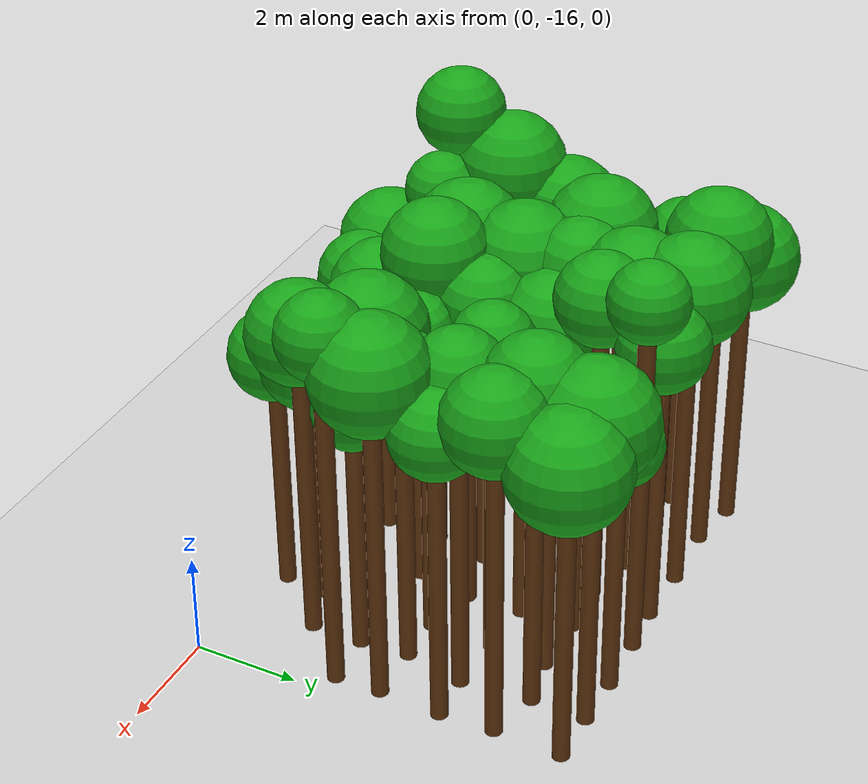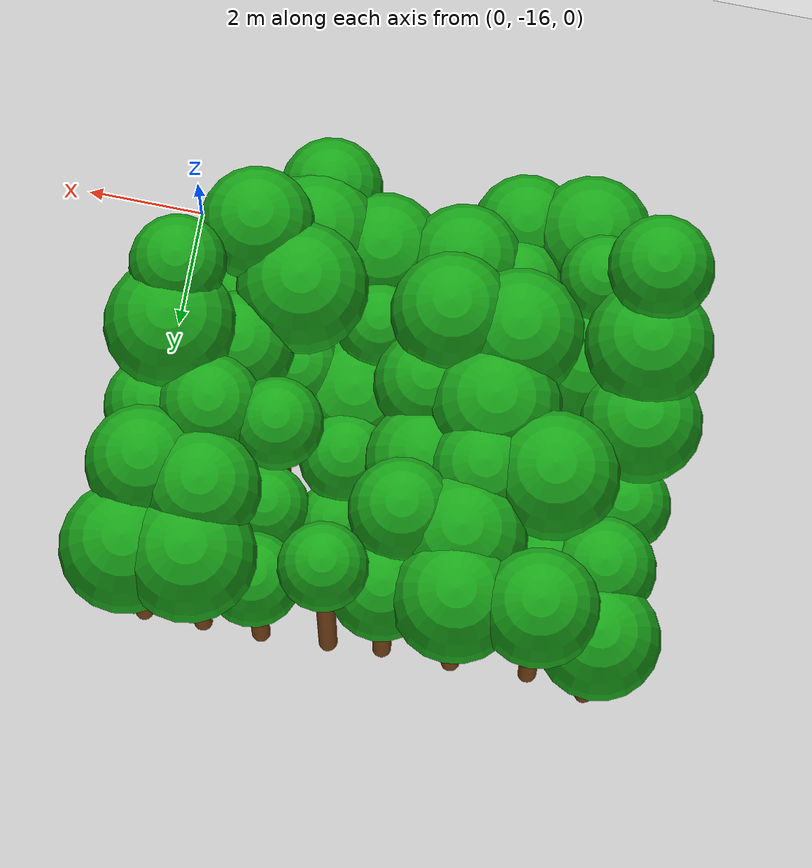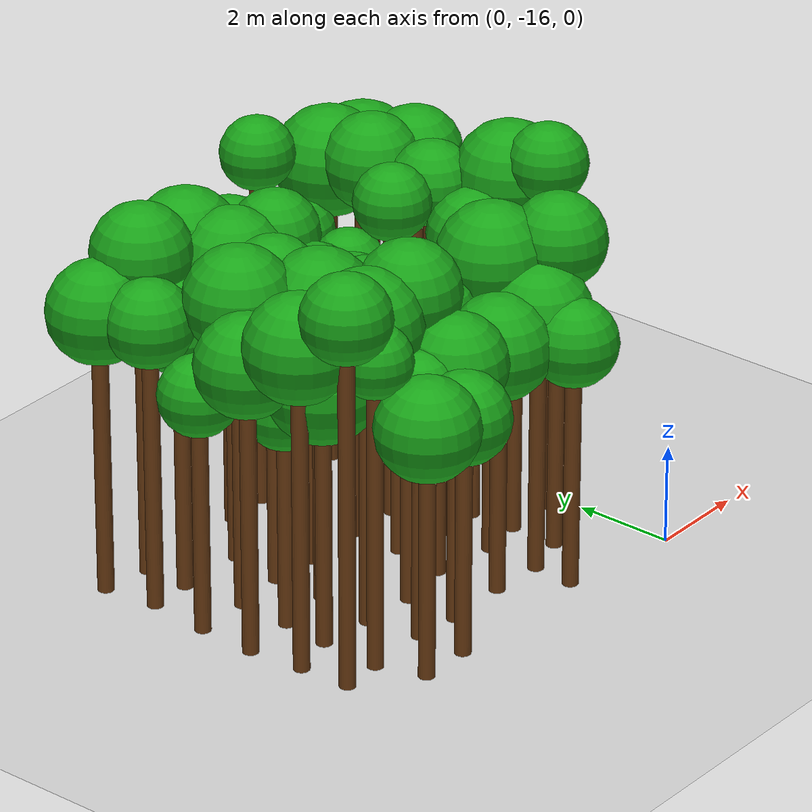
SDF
<sdf version="1.6">
 <world name="forest_world">
  <include><uri>model://sun</uri></include>
  <include><uri>model://ground_plane</uri></include>
  <model name="tree_1114_trunk">
   <static>true</static>
   <pose>-7.92 -14.71 3.49 0 0 0</pose>
   <link name="link">
    <collision name="collision">
     <geometry><cylinder><radius>0.16</radius><length>6.98</length></cylinder></geometry>
    </collision>
    <visual name="visual">
     <geometry><cylinder><radius>0.16</radius><length>6.98</length></cylinder></geometry>
     <material><ambient>0.35 0.20 0.05 1</ambient><diffuse>0.45 0.25 0.08 1</diffuse></material>
    </visual>
   </link>
  </model>
  <model name="tree_1114_leaf">
   <static>true</static>
   <pose>-7.92 -14.71 7.49 0 0 0</pose>
   <link name="link">
    <collision name="collision"><geometry><sphere><radius>0.85</radius></sphere></geometry></collision>
    <visual name="visual">
     <geometry><sphere><radius>0.85</radius></sphere></geometry>
     <material><ambient>0.05 0.45 0.05 1</ambient><diffuse>0.10 0.65 0.10 1</diffuse></material>
    </visual>
   </link>
  </model>
  <model name="tree_1115_trunk">
   <static>true</static>
   <pose>-7.97 -13.67 2.98 0 0 0</pose>
   <link name="link">
    <collision name="collision">
     <geometry><cylinder><radius>0.16</radius><length>5.97</length></cylinder></geometry>
    </collision>
    <visual name="visual">
     <geometry><cylinder><radius>0.16</radius><length>5.97</length></cylinder></geometry>
     <material><ambient>0.35 0.20 0.05 1</ambient><diffuse>0.45 0.25 0.08 1</diffuse></material>
    </visual>
   </link>
  </model>
  <model name="tree_1115_leaf">
   <static>true</static>
   <pose>-7.97 -13.67 6.59 0 0 0</pose>
   <link name="link">
    <collision name="collision"><geometry><sphere><radius>1.04</radius></sphere></geometry></collision>
    <visual name="visual">
     <geometry><sphere><radius>1.04</radius></sphere></geometry>
     <material><ambient>0.05 0.45 0.05 1</ambient><diffuse>0.10 0.65 0.10 1</diffuse></material>
    </visual>
   </link>
  </model>
  <model name="tree_1116_trunk">
   <static>true</static>
   <pose>-8.08 -12.55 2.66 0 0 0</pose>
   <link name="link">
    <collision name="collision">
     <geometry><cylinder><radius>0.16</radius><length>5.33</length></cylinder></geometry>
    </collision>
    <visual name="visual">
     <geometry><cylinder><radius>0.16</radius><length>5.33</length></cylinder></geometry>
     <material><ambient>0.35 0.20 0.05 1</ambient><diffuse>0.45 0.25 0.08 1</diffuse></material>
    </visual>
   </link>
  </model>
  <model name="tree_1116_leaf">
   <static>true</static>
   <pose>-8.08 -12.55 5.92 0 0 0</pose>
   <link name="link">
    <collision name="collision"><geometry><sphere><radius>0.99</radius></sphere></geometry></collision>
    <visual name="visual">
     <geometry><sphere><radius>0.99</radius></sphere></geometry>
     <material><ambient>0.05 0.45 0.05 1</ambient><diffuse>0.10 0.65 0.10 1</diffuse></material>
    </visual>
   </link>
  </model>
  <model name="tree_1117_trunk">
   <static>true</static>
   <pose>-8.05 -11.37 2.22 0 0 0</pose>
   <link name="link">
    <collision name="collision">
     <geometry><cylinder><radius>0.16</radius><length>4.43</length></cylinder></geometry>
    </collision>
    <visual name="visual">
     <geometry><cylinder><radius>0.16</radius><length>4.43</length></cylinder></geometry>
     <material><ambient>0.35 0.20 0.05 1</ambient><diffuse>0.45 0.25 0.08 1</diffuse></material>
    </visual>
   </link>
  </model>
  <model name="tree_1117_leaf">
   <static>true</static>
   <pose>-8.05 -11.37 4.90 0 0 0</pose>
   <link name="link">
    <collision name="collision"><geometry><sphere><radius>0.78</radius></sphere></geometry></collision>
    <visual name="visual">
     <geometry><sphere><radius>0.78</radius></sphere></geometry>
     <material><ambient>0.05 0.45 0.05 1</ambient><diffuse>0.10 0.65 0.10 1</diffuse></material>
    </visual>
   </link>
  </model>
  <model name="tree_1118_trunk">
   <static>true</static>
   <pose>-7.92 -10.10 2.70 0 0 0</pose>
   <link name="link">
    <collision name="collision">
     <geometry><cylinder><radius>0.16</radius><length>5.39</length></cylinder></geometry>
    </collision>
    <visual name="visual">
     <geometry><cylinder><radius>0.16</radius><length>5.39</length></cylinder></geometry>
     <material><ambient>0.35 0.20 0.05 1</ambient><diffuse>0.45 0.25 0.08 1</diffuse></material>
    </visual>
   </link>
  </model>
  <model name="tree_1118_leaf">
   <static>true</static>
   <pose>-7.92 -10.10 5.90 0 0 0</pose>
   <link name="link">
    <collision name="collision"><geometry><sphere><radius>0.85</radius></sphere></geometry></collision>
    <visual name="visual">
     <geometry><sphere><radius>0.85</radius></sphere></geometry>
     <material><ambient>0.05 0.45 0.05 1</ambient><diffuse>0.10 0.65 0.10 1</diffuse></material>
    </visual>
   </link>
  </model>
  <model name="tree_1119_trunk">
   <static>true</static>
   <pose>-8.05 -8.99 2.62 0 0 0</pose>
   <link name="link">
    <collision name="collision">
     <geometry><cylinder><radius>0.16</radius><length>5.24</length></cylinder></geometry>
    </collision>
    <visual name="visual">
     <geometry><cylinder><radius>0.16</radius><length>5.24</length></cylinder></geometry>
     <material><ambient>0.35 0.20 0.05 1</ambient><diffuse>0.45 0.25 0.08 1</diffuse></material>
    </visual>
   </link>
  </model>
  <model name="tree_1119_leaf">
   <static>true</static>
   <pose>-8.05 -8.99 5.83 0 0 0</pose>
   <link name="link">
    <collision name="collision"><geometry><sphere><radius>1.00</radius></sphere></geometry></collision>
    <visual name="visual">
     <geometry><sphere><radius>1.00</radius></sphere></geometry>
     <material><ambient>0.05 0.45 0.05 1</ambient><diffuse>0.10 0.65 0.10 1</diffuse></material>
    </visual>
   </link>
  </model>
  <model name="tree_1168_trunk">
   <static>true</static>
   <pose>-6.75 -15.61 2.26 0 0 0</pose>
   <link name="link">
    <collision name="collision">
     <geometry><cylinder><radius>0.16</radius><length>4.51</length></cylinder></geometry>
    </collision>
    <visual name="visual">
     <geometry><cylinder><radius>0.16</radius><length>4.51</length></cylinder></geometry>
     <material><ambient>0.35 0.20 0.05 1</ambient><diffuse>0.45 0.25 0.08 1</diffuse></material>
    </visual>
   </link>
  </model>
  <model name="tree_1168_leaf">
   <static>true</static>
   <pose>-6.75 -15.61 5.11 0 0 0</pose>
   <link name="link">
    <collision name="collision"><geometry><sphere><radius>0.99</radius></sphere></geometry></collision>
    <visual name="visual">
     <geometry><sphere><radius>0.99</radius></sphere></geometry>
     <material><ambient>0.05 0.45 0.05 1</ambient><diffuse>0.10 0.65 0.10 1</diffuse></material>
    </visual>
   </link>
  </model>
  <model name="tree_1169_trunk">
   <static>true</static>
   <pose>-7.06 -14.66 2.93 0 0 0</pose>
   <link name="link">
    <collision name="collision">
     <geometry><cylinder><radius>0.16</radius><length>5.86</length></cylinder></geometry>
    </collision>
    <visual name="visual">
     <geometry><cylinder><radius>0.16</radius><length>5.86</length></cylinder></geometry>
     <material><ambient>0.35 0.20 0.05 1</ambient><diffuse>0.45 0.25 0.08 1</diffuse></material>
    </visual>
   </link>
  </model>
  <model name="tree_1169_leaf">
   <static>true</static>
   <pose>-7.06 -14.66 6.29 0 0 0</pose>
   <link name="link">
    <collision name="collision"><geometry><sphere><radius>0.71</radius></sphere></geometry></collision>
    <visual name="visual">
     <geometry><sphere><radius>0.71</radius></sphere></geometry>
     <material><ambient>0.05 0.45 0.05 1</ambient><diffuse>0.10 0.65 0.10 1</diffuse></material>
    </visual>
   </link>
  </model>
  <model name="tree_1170_trunk">
   <static>true</static>
   <pose>-7.01 -13.41 2.35 0 0 0</pose>
   <link name="link">
    <collision name="collision">
     <geometry><cylinder><radius>0.16</radius><length>4.70</length></cylinder></geometry>
    </collision>
    <visual name="visual">
     <geometry><cylinder><radius>0.16</radius><length>4.70</length></cylinder></geometry>
     <material><ambient>0.35 0.20 0.05 1</ambient><diffuse>0.45 0.25 0.08 1</diffuse></material>
    </visual>
   </link>
  </model>
  <model name="tree_1170_leaf">
   <static>true</static>
   <pose>-7.01 -13.41 5.35 0 0 0</pose>
   <link name="link">
    <collision name="collision"><geometry><sphere><radius>1.09</radius></sphere></geometry></collision>
    <visual name="visual">
     <geometry><sphere><radius>1.09</radius></sphere></geometry>
     <material><ambient>0.05 0.45 0.05 1</ambient><diffuse>0.10 0.65 0.10 1</diffuse></material>
    </visual>
   </link>
  </model>
  <model name="tree_1171_trunk">
   <static>true</static>
   <pose>-6.91 -12.43 2.02 0 0 0</pose>
   <link name="link">
    <collision name="collision">
     <geometry><cylinder><radius>0.16</radius><length>4.05</length></cylinder></geometry>
    </collision>
    <visual name="visual">
     <geometry><cylinder><radius>0.16</radius><length>4.05</length></cylinder></geometry>
     <material><ambient>0.35 0.20 0.05 1</ambient><diffuse>0.45 0.25 0.08 1</diffuse></material>
    </visual>
   </link>
  </model>
  <model name="tree_1171_leaf">
   <static>true</static>
   <pose>-6.91 -12.43 4.53 0 0 0</pose>
   <link name="link">
    <collision name="collision"><geometry><sphere><radius>0.80</radius></sphere></geometry></collision>
    <visual name="visual">
     <geometry><sphere><radius>0.80</radius></sphere></geometry>
     <material><ambient>0.05 0.45 0.05 1</ambient><diffuse>0.10 0.65 0.10 1</diffuse></material>
    </visual>
   </link>
  </model>
  <model name="tree_1172_trunk">
   <static>true</static>
   <pose>-6.88 -11.34 2.86 0 0 0</pose>
   <link name="link">
    <collision name="collision">
     <geometry><cylinder><radius>0.16</radius><length>5.73</length></cylinder></geometry>
    </collision>
    <visual name="visual">
     <geometry><cylinder><radius>0.16</radius><length>5.73</length></cylinder></geometry>
     <material><ambient>0.35 0.20 0.05 1</ambient><diffuse>0.45 0.25 0.08 1</diffuse></material>
    </visual>
   </link>
  </model>
  <model name="tree_1172_leaf">
   <static>true</static>
   <pose>-6.88 -11.34 6.36 0 0 0</pose>
   <link name="link">
    <collision name="collision"><geometry><sphere><radius>1.05</radius></sphere></geometry></collision>
    <visual name="visual">
     <geometry><sphere><radius>1.05</radius></sphere></geometry>
     <material><ambient>0.05 0.45 0.05 1</ambient><diffuse>0.10 0.65 0.10 1</diffuse></material>
    </visual>
   </link>
  </model>
  <model name="tree_1173_trunk">
   <static>true</static>
   <pose>-7.03 -10.06 2.46 0 0 0</pose>
   <link name="link">
    <collision name="collision">
     <geometry><cylinder><radius>0.16</radius><length>4.92</length></cylinder></geometry>
    </collision>
    <visual name="visual">
     <geometry><cylinder><radius>0.16</radius><length>4.92</length></cylinder></geometry>
     <material><ambient>0.35 0.20 0.05 1</ambient><diffuse>0.45 0.25 0.08 1</diffuse></material>
    </visual>
   </link>
  </model>
  <model name="tree_1173_leaf">
   <static>true</static>
   <pose>-7.03 -10.06 5.47 0 0 0</pose>
   <link name="link">
    <collision name="collision"><geometry><sphere><radius>0.91</radius></sphere></geometry></collision>
    <visual name="visual">
     <geometry><sphere><radius>0.91</radius></sphere></geometry>
     <material><ambient>0.05 0.45 0.05 1</ambient><diffuse>0.10 0.65 0.10 1</diffuse></material>
    </visual>
   </link>
  </model>
  <model name="tree_1174_trunk">
   <static>true</static>
   <pose>-7.04 -9.15 3.05 0 0 0</pose>
   <link name="link">
    <collision name="collision">
     <geometry><cylinder><radius>0.16</radius><length>6.10</length></cylinder></geometry>
    </collision>
    <visual name="visual">
     <geometry><cylinder><radius>0.16</radius><length>6.10</length></cylinder></geometry>
     <material><ambient>0.35 0.20 0.05 1</ambient><diffuse>0.45 0.25 0.08 1</diffuse></material>
    </visual>
   </link>
  </model>
  <model name="tree_1174_leaf">
   <static>true</static>
   <pose>-7.04 -9.15 6.68 0 0 0</pose>
   <link name="link">
    <collision name="collision"><geometry><sphere><radius>0.97</radius></sphere></geometry></collision>
    <visual name="visual">
     <geometry><sphere><radius>0.97</radius></sphere></geometry>
     <material><ambient>0.05 0.45 0.05 1</ambient><diffuse>0.10 0.65 0.10 1</diffuse></material>
    </visual>
   </link>
  </model>
  <model name="tree_1223_trunk">
   <static>true</static>
   <pose>-5.67 -15.59 2.17 0 0 0</pose>
   <link name="link">
    <collision name="collision">
     <geometry><cylinder><radius>0.16</radius><length>4.35</length></cylinder></geometry>
    </collision>
    <visual name="visual">
     <geometry><cylinder><radius>0.16</radius><length>4.35</length></cylinder></geometry>
     <material><ambient>0.35 0.20 0.05 1</ambient><diffuse>0.45 0.25 0.08 1</diffuse></material>
    </visual>
   </link>
  </model>
  <model name="tree_1223_leaf">
   <static>true</static>
   <pose>-5.67 -15.59 4.88 0 0 0</pose>
   <link name="link">
    <collision name="collision"><geometry><sphere><radius>0.89</radius></sphere></geometry></collision>
    <visual name="visual">
     <geometry><sphere><radius>0.89</radius></sphere></geometry>
     <material><ambient>0.05 0.45 0.05 1</ambient><diffuse>0.10 0.65 0.10 1</diffuse></material>
    </visual>
   </link>
  </model>
  <model name="tree_1224_trunk">
   <static>true</static>
   <pose>-5.72 -14.62 2.34 0 0 0</pose>
   <link name="link">
    <collision name="collision">
     <geometry><cylinder><radius>0.16</radius><length>4.67</length></cylinder></geometry>
    </collision>
    <visual name="visual">
     <geometry><cylinder><radius>0.16</radius><length>4.67</length></cylinder></geometry>
     <material><ambient>0.35 0.20 0.05 1</ambient><diffuse>0.45 0.25 0.08 1</diffuse></material>
    </visual>
   </link>
  </model>
  <model name="tree_1224_leaf">
   <static>true</static>
   <pose>-5.72 -14.62 5.13 0 0 0</pose>
   <link name="link">
    <collision name="collision"><geometry><sphere><radius>0.76</radius></sphere></geometry></collision>
    <visual name="visual">
     <geometry><sphere><radius>0.76</radius></sphere></geometry>
     <material><ambient>0.05 0.45 0.05 1</ambient><diffuse>0.10 0.65 0.10 1</diffuse></material>
    </visual>
   </link>
  </model>
  <model name="tree_1225_trunk">
   <static>true</static>
   <pose>-5.91 -13.54 2.78 0 0 0</pose>
   <link name="link">
    <collision name="collision">
     <geometry><cylinder><radius>0.16</radius><length>5.56</length></cylinder></geometry>
    </collision>
    <visual name="visual">
     <geometry><cylinder><radius>0.16</radius><length>5.56</length></cylinder></geometry>
     <material><ambient>0.35 0.20 0.05 1</ambient><diffuse>0.45 0.25 0.08 1</diffuse></material>
    </visual>
   </link>
  </model>
  <model name="tree_1225_leaf">
   <static>true</static>
   <pose>-5.91 -13.54 6.20 0 0 0</pose>
   <link name="link">
    <collision name="collision"><geometry><sphere><radius>1.06</radius></sphere></geometry></collision>
    <visual name="visual">
     <geometry><sphere><radius>1.06</radius></sphere></geometry>
     <material><ambient>0.05 0.45 0.05 1</ambient><diffuse>0.10 0.65 0.10 1</diffuse></material>
    </visual>
   </link>
  </model>
  <model name="tree_1226_trunk">
   <static>true</static>
   <pose>-5.75 -12.31 2.76 0 0 0</pose>
   <link name="link">
    <collision name="collision">
     <geometry><cylinder><radius>0.16</radius><length>5.51</length></cylinder></geometry>
    </collision>
    <visual name="visual">
     <geometry><cylinder><radius>0.16</radius><length>5.51</length></cylinder></geometry>
     <material><ambient>0.35 0.20 0.05 1</ambient><diffuse>0.45 0.25 0.08 1</diffuse></material>
    </visual>
   </link>
  </model>
  <model name="tree_1226_leaf">
   <static>true</static>
   <pose>-5.75 -12.31 6.15 0 0 0</pose>
   <link name="link">
    <collision name="collision"><geometry><sphere><radius>1.07</radius></sphere></geometry></collision>
    <visual name="visual">
     <geometry><sphere><radius>1.07</radius></sphere></geometry>
     <material><ambient>0.05 0.45 0.05 1</ambient><diffuse>0.10 0.65 0.10 1</diffuse></material>
    </visual>
   </link>
  </model>
  <model name="tree_1227_trunk">
   <static>true</static>
   <pose>-5.78 -11.23 2.86 0 0 0</pose>
   <link name="link">
    <collision name="collision">
     <geometry><cylinder><radius>0.16</radius><length>5.72</length></cylinder></geometry>
    </collision>
    <visual name="visual">
     <geometry><cylinder><radius>0.16</radius><length>5.72</length></cylinder></geometry>
     <material><ambient>0.35 0.20 0.05 1</ambient><diffuse>0.45 0.25 0.08 1</diffuse></material>
    </visual>
   </link>
  </model>
  <model name="tree_1227_leaf">
   <static>true</static>
   <pose>-5.78 -11.23 6.26 0 0 0</pose>
   <link name="link">
    <collision name="collision"><geometry><sphere><radius>0.90</radius></sphere></geometry></collision>
    <visual name="visual">
     <geometry><sphere><radius>0.90</radius></sphere></geometry>
     <material><ambient>0.05 0.45 0.05 1</ambient><diffuse>0.10 0.65 0.10 1</diffuse></material>
    </visual>
   </link>
  </model>
  <model name="tree_1228_trunk">
   <static>true</static>
   <pose>-5.62 -10.12 2.81 0 0 0</pose>
   <link name="link">
    <collision name="collision">
     <geometry><cylinder><radius>0.16</radius><length>5.61</length></cylinder></geometry>
    </collision>
    <visual name="visual">
     <geometry><cylinder><radius>0.16</radius><length>5.61</length></cylinder></geometry>
     <material><ambient>0.35 0.20 0.05 1</ambient><diffuse>0.45 0.25 0.08 1</diffuse></material>
    </visual>
   </link>
  </model>
  <model name="tree_1228_leaf">
   <static>true</static>
   <pose>-5.62 -10.12 6.25 0 0 0</pose>
   <link name="link">
    <collision name="collision"><geometry><sphere><radius>1.06</radius></sphere></geometry></collision>
    <visual name="visual">
     <geometry><sphere><radius>1.06</radius></sphere></geometry>
     <material><ambient>0.05 0.45 0.05 1</ambient><diffuse>0.10 0.65 0.10 1</diffuse></material>
    </visual>
   </link>
  </model>
  <model name="tree_1229_trunk">
   <static>true</static>
   <pose>-5.72 -9.09 2.89 0 0 0</pose>
   <link name="link">
    <collision name="collision">
     <geometry><cylinder><radius>0.16</radius><length>5.78</length></cylinder></geometry>
    </collision>
    <visual name="visual">
     <geometry><cylinder><radius>0.16</radius><length>5.78</length></cylinder></geometry>
     <material><ambient>0.35 0.20 0.05 1</ambient><diffuse>0.45 0.25 0.08 1</diffuse></material>
    </visual>
   </link>
  </model>
  <model name="tree_1229_leaf">
   <static>true</static>
   <pose>-5.72 -9.09 6.40 0 0 0</pose>
   <link name="link">
    <collision name="collision"><geometry><sphere><radius>1.04</radius></sphere></geometry></collision>
    <visual name="visual">
     <geometry><sphere><radius>1.04</radius></sphere></geometry>
     <material><ambient>0.05 0.45 0.05 1</ambient><diffuse>0.10 0.65 0.10 1</diffuse></material>
    </visual>
   </link>
  </model>
  <model name="tree_1279_trunk">
   <static>true</static>
   <pose>-4.80 -14.71 2.36 0 0 0</pose>
   <link name="link">
    <collision name="collision">
     <geometry><cylinder><radius>0.16</radius><length>4.73</length></cylinder></geometry>
    </collision>
    <visual name="visual">
     <geometry><cylinder><radius>0.16</radius><length>4.73</length></cylinder></geometry>
     <material><ambient>0.35 0.20 0.05 1</ambient><diffuse>0.45 0.25 0.08 1</diffuse></material>
    </visual>
   </link>
  </model>
  <model name="tree_1279_leaf">
   <static>true</static>
   <pose>-4.80 -14.71 5.32 0 0 0</pose>
   <link name="link">
    <collision name="collision"><geometry><sphere><radius>0.98</radius></sphere></geometry></collision>
    <visual name="visual">
     <geometry><sphere><radius>0.98</radius></sphere></geometry>
     <material><ambient>0.05 0.45 0.05 1</ambient><diffuse>0.10 0.65 0.10 1</diffuse></material>
    </visual>
   </link>
  </model>
  <model name="tree_1280_trunk">
   <static>true</static>
   <pose>-4.79 -13.61 2.92 0 0 0</pose>
   <link name="link">
    <collision name="collision">
     <geometry><cylinder><radius>0.16</radius><length>5.84</length></cylinder></geometry>
    </collision>
    <visual name="visual">
     <geometry><cylinder><radius>0.16</radius><length>5.84</length></cylinder></geometry>
     <material><ambient>0.35 0.20 0.05 1</ambient><diffuse>0.45 0.25 0.08 1</diffuse></material>
    </visual>
   </link>
  </model>
  <model name="tree_1280_leaf">
   <static>true</static>
   <pose>-4.79 -13.61 6.44 0 0 0</pose>
   <link name="link">
    <collision name="collision"><geometry><sphere><radius>0.99</radius></sphere></geometry></collision>
    <visual name="visual">
     <geometry><sphere><radius>0.99</radius></sphere></geometry>
     <material><ambient>0.05 0.45 0.05 1</ambient><diffuse>0.10 0.65 0.10 1</diffuse></material>
    </visual>
   </link>
  </model>
  <model name="tree_1281_trunk">
   <static>true</static>
   <pose>-4.61 -12.54 2.64 0 0 0</pose>
   <link name="link">
    <collision name="collision">
     <geometry><cylinder><radius>0.16</radius><length>5.27</length></cylinder></geometry>
    </collision>
    <visual name="visual">
     <geometry><cylinder><radius>0.16</radius><length>5.27</length></cylinder></geometry>
     <material><ambient>0.35 0.20 0.05 1</ambient><diffuse>0.45 0.25 0.08 1</diffuse></material>
    </visual>
   </link>
  </model>
  <model name="tree_1281_leaf">
   <static>true</static>
   <pose>-4.61 -12.54 5.80 0 0 0</pose>
   <link name="link">
    <collision name="collision"><geometry><sphere><radius>0.88</radius></sphere></geometry></collision>
    <visual name="visual">
     <geometry><sphere><radius>0.88</radius></sphere></geometry>
     <material><ambient>0.05 0.45 0.05 1</ambient><diffuse>0.10 0.65 0.10 1</diffuse></material>
    </visual>
   </link>
  </model>
  <model name="tree_1282_trunk">
   <static>true</static>
   <pose>-4.78 -11.30 2.54 0 0 0</pose>
   <link name="link">
    <collision name="collision">
     <geometry><cylinder><radius>0.16</radius><length>5.09</length></cylinder></geometry>
    </collision>
    <visual name="visual">
     <geometry><cylinder><radius>0.16</radius><length>5.09</length></cylinder></geometry>
     <material><ambient>0.35 0.20 0.05 1</ambient><diffuse>0.45 0.25 0.08 1</diffuse></material>
    </visual>
   </link>
  </model>
  <model name="tree_1282_leaf">
   <static>true</static>
   <pose>-4.78 -11.30 5.66 0 0 0</pose>
   <link name="link">
    <collision name="collision"><geometry><sphere><radius>0.96</radius></sphere></geometry></collision>
    <visual name="visual">
     <geometry><sphere><radius>0.96</radius></sphere></geometry>
     <material><ambient>0.05 0.45 0.05 1</ambient><diffuse>0.10 0.65 0.10 1</diffuse></material>
    </visual>
   </link>
  </model>
  <model name="tree_1283_trunk">
   <static>true</static>
   <pose>-4.62 -10.30 2.99 0 0 0</pose>
   <link name="link">
    <collision name="collision">
     <geometry><cylinder><radius>0.16</radius><length>5.99</length></cylinder></geometry>
    </collision>
    <visual name="visual">
     <geometry><cylinder><radius>0.16</radius><length>5.99</length></cylinder></geometry>
     <material><ambient>0.35 0.20 0.05 1</ambient><diffuse>0.45 0.25 0.08 1</diffuse></material>
    </visual>
   </link>
  </model>
  <model name="tree_1283_leaf">
   <static>true</static>
   <pose>-4.62 -10.30 6.50 0 0 0</pose>
   <link name="link">
    <collision name="collision"><geometry><sphere><radius>0.86</radius></sphere></geometry></collision>
    <visual name="visual">
     <geometry><sphere><radius>0.86</radius></sphere></geometry>
     <material><ambient>0.05 0.45 0.05 1</ambient><diffuse>0.10 0.65 0.10 1</diffuse></material>
    </visual>
   </link>
  </model>
  <model name="tree_1284_trunk">
   <static>true</static>
   <pose>-4.53 -9.10 2.73 0 0 0</pose>
   <link name="link">
    <collision name="collision">
     <geometry><cylinder><radius>0.16</radius><length>5.45</length></cylinder></geometry>
    </collision>
    <visual name="visual">
     <geometry><cylinder><radius>0.16</radius><length>5.45</length></cylinder></geometry>
     <material><ambient>0.35 0.20 0.05 1</ambient><diffuse>0.45 0.25 0.08 1</diffuse></material>
    </visual>
   </link>
  </model>
  <model name="tree_1284_leaf">
   <static>true</static>
   <pose>-4.53 -9.10 5.96 0 0 0</pose>
   <link name="link">
    <collision name="collision"><geometry><sphere><radius>0.85</radius></sphere></geometry></collision>
    <visual name="visual">
     <geometry><sphere><radius>0.85</radius></sphere></geometry>
     <material><ambient>0.05 0.45 0.05 1</ambient><diffuse>0.10 0.65 0.10 1</diffuse></material>
    </visual>
   </link>
  </model>
  <model name="tree_1334_trunk">
   <static>true</static>
   <pose>-3.47 -14.66 2.25 0 0 0</pose>
   <link name="link">
    <collision name="collision">
     <geometry><cylinder><radius>0.16</radius><length>4.50</length></cylinder></geometry>
    </collision>
    <visual name="visual">
     <geometry><cylinder><radius>0.16</radius><length>4.50</length></cylinder></geometry>
     <material><ambient>0.35 0.20 0.05 1</ambient><diffuse>0.45 0.25 0.08 1</diffuse></material>
    </visual>
   </link>
  </model>
  <model name="tree_1334_leaf">
   <static>true</static>
   <pose>-3.47 -14.66 5.11 0 0 0</pose>
   <link name="link">
    <collision name="collision"><geometry><sphere><radius>1.02</radius></sphere></geometry></collision>
    <visual name="visual">
     <geometry><sphere><radius>1.02</radius></sphere></geometry>
     <material><ambient>0.05 0.45 0.05 1</ambient><diffuse>0.10 0.65 0.10 1</diffuse></material>
    </visual>
   </link>
  </model>
  <model name="tree_1335_trunk">
   <static>true</static>
   <pose>-3.66 -13.39 2.55 0 0 0</pose>
   <link name="link">
    <collision name="collision">
     <geometry><cylinder><radius>0.16</radius><length>5.09</length></cylinder></geometry>
    </collision>
    <visual name="visual">
     <geometry><cylinder><radius>0.16</radius><length>5.09</length></cylinder></geometry>
     <material><ambient>0.35 0.20 0.05 1</ambient><diffuse>0.45 0.25 0.08 1</diffuse></material>
    </visual>
   </link>
  </model>
  <model name="tree_1335_leaf">
   <static>true</static>
   <pose>-3.66 -13.39 5.52 0 0 0</pose>
   <link name="link">
    <collision name="collision"><geometry><sphere><radius>0.71</radius></sphere></geometry></collision>
    <visual name="visual">
     <geometry><sphere><radius>0.71</radius></sphere></geometry>
     <material><ambient>0.05 0.45 0.05 1</ambient><diffuse>0.10 0.65 0.10 1</diffuse></material>
    </visual>
   </link>
  </model>
  <model name="tree_1336_trunk">
   <static>true</static>
   <pose>-3.47 -12.31 2.02 0 0 0</pose>
   <link name="link">
    <collision name="collision">
     <geometry><cylinder><radius>0.16</radius><length>4.05</length></cylinder></geometry>
    </collision>
    <visual name="visual">
     <geometry><cylinder><radius>0.16</radius><length>4.05</length></cylinder></geometry>
     <material><ambient>0.35 0.20 0.05 1</ambient><diffuse>0.45 0.25 0.08 1</diffuse></material>
    </visual>
   </link>
  </model>
  <model name="tree_1336_leaf">
   <static>true</static>
   <pose>-3.47 -12.31 4.69 0 0 0</pose>
   <link name="link">
    <collision name="collision"><geometry><sphere><radius>1.07</radius></sphere></geometry></collision>
    <visual name="visual">
     <geometry><sphere><radius>1.07</radius></sphere></geometry>
     <material><ambient>0.05 0.45 0.05 1</ambient><diffuse>0.10 0.65 0.10 1</diffuse></material>
    </visual>
   </link>
  </model>
  <model name="tree_1337_trunk">
   <static>true</static>
   <pose>-3.52 -11.23 2.35 0 0 0</pose>
   <link name="link">
    <collision name="collision">
     <geometry><cylinder><radius>0.16</radius><length>4.70</length></cylinder></geometry>
    </collision>
    <visual name="visual">
     <geometry><cylinder><radius>0.16</radius><length>4.70</length></cylinder></geometry>
     <material><ambient>0.35 0.20 0.05 1</ambient><diffuse>0.45 0.25 0.08 1</diffuse></material>
    </visual>
   </link>
  </model>
  <model name="tree_1337_leaf">
   <static>true</static>
   <pose>-3.52 -11.23 5.15 0 0 0</pose>
   <link name="link">
    <collision name="collision"><geometry><sphere><radius>0.76</radius></sphere></geometry></collision>
    <visual name="visual">
     <geometry><sphere><radius>0.76</radius></sphere></geometry>
     <material><ambient>0.05 0.45 0.05 1</ambient><diffuse>0.10 0.65 0.10 1</diffuse></material>
    </visual>
   </link>
  </model>
  <model name="tree_1338_trunk">
   <static>true</static>
   <pose>-3.57 -10.22 2.11 0 0 0</pose>
   <link name="link">
    <collision name="collision">
     <geometry><cylinder><radius>0.16</radius><length>4.21</length></cylinder></geometry>
    </collision>
    <visual name="visual">
     <geometry><cylinder><radius>0.16</radius><length>4.21</length></cylinder></geometry>
     <material><ambient>0.35 0.20 0.05 1</ambient><diffuse>0.45 0.25 0.08 1</diffuse></material>
    </visual>
   </link>
  </model>
  <model name="tree_1338_leaf">
   <static>true</static>
   <pose>-3.57 -10.22 4.64 0 0 0</pose>
   <link name="link">
    <collision name="collision"><geometry><sphere><radius>0.71</radius></sphere></geometry></collision>
    <visual name="visual">
     <geometry><sphere><radius>0.71</radius></sphere></geometry>
     <material><ambient>0.05 0.45 0.05 1</ambient><diffuse>0.10 0.65 0.10 1</diffuse></material>
    </visual>
   </link>
  </model>
  <model name="tree_1339_trunk">
   <static>true</static>
   <pose>-3.61 -9.03 3.47 0 0 0</pose>
   <link name="link">
    <collision name="collision">
     <geometry><cylinder><radius>0.16</radius><length>6.95</length></cylinder></geometry>
    </collision>
    <visual name="visual">
     <geometry><cylinder><radius>0.16</radius><length>6.95</length></cylinder></geometry>
     <material><ambient>0.35 0.20 0.05 1</ambient><diffuse>0.45 0.25 0.08 1</diffuse></material>
    </visual>
   </link>
  </model>
  <model name="tree_1339_leaf">
   <static>true</static>
   <pose>-3.61 -9.03 7.38 0 0 0</pose>
   <link name="link">
    <collision name="collision"><geometry><sphere><radius>0.72</radius></sphere></geometry></collision>
    <visual name="visual">
     <geometry><sphere><radius>0.72</radius></sphere></geometry>
     <material><ambient>0.05 0.45 0.05 1</ambient><diffuse>0.10 0.65 0.10 1</diffuse></material>
    </visual>
   </link>
  </model>
  <model name="tree_1388_trunk">
   <static>true</static>
   <pose>-2.43 -15.58 2.29 0 0 0</pose>
   <link name="link">
    <collision name="collision">
     <geometry><cylinder><radius>0.16</radius><length>4.57</length></cylinder></geometry>
    </collision>
    <visual name="visual">
     <geometry><cylinder><radius>0.16</radius><length>4.57</length></cylinder></geometry>
     <material><ambient>0.35 0.20 0.05 1</ambient><diffuse>0.45 0.25 0.08 1</diffuse></material>
    </visual>
   </link>
  </model>
  <model name="tree_1388_leaf">
   <static>true</static>
   <pose>-2.43 -15.58 5.08 0 0 0</pose>
   <link name="link">
    <collision name="collision"><geometry><sphere><radius>0.85</radius></sphere></geometry></collision>
    <visual name="visual">
     <geometry><sphere><radius>0.85</radius></sphere></geometry>
     <material><ambient>0.05 0.45 0.05 1</ambient><diffuse>0.10 0.65 0.10 1</diffuse></material>
    </visual>
   </link>
  </model>
  <model name="tree_1389_trunk">
   <static>true</static>
   <pose>-2.37 -14.72 2.36 0 0 0</pose>
   <link name="link">
    <collision name="collision">
     <geometry><cylinder><radius>0.16</radius><length>4.72</length></cylinder></geometry>
    </collision>
    <visual name="visual">
     <geometry><cylinder><radius>0.16</radius><length>4.72</length></cylinder></geometry>
     <material><ambient>0.35 0.20 0.05 1</ambient><diffuse>0.45 0.25 0.08 1</diffuse></material>
    </visual>
   </link>
  </model>
  <model name="tree_1389_leaf">
   <static>true</static>
   <pose>-2.37 -14.72 5.34 0 0 0</pose>
   <link name="link">
    <collision name="collision"><geometry><sphere><radius>1.03</radius></sphere></geometry></collision>
    <visual name="visual">
     <geometry><sphere><radius>1.03</radius></sphere></geometry>
     <material><ambient>0.05 0.45 0.05 1</ambient><diffuse>0.10 0.65 0.10 1</diffuse></material>
    </visual>
   </link>
  </model>
  <model name="tree_1390_trunk">
   <static>true</static>
   <pose>-2.35 -13.61 2.77 0 0 0</pose>
   <link name="link">
    <collision name="collision">
     <geometry><cylinder><radius>0.16</radius><length>5.54</length></cylinder></geometry>
    </collision>
    <visual name="visual">
     <geometry><cylinder><radius>0.16</radius><length>5.54</length></cylinder></geometry>
     <material><ambient>0.35 0.20 0.05 1</ambient><diffuse>0.45 0.25 0.08 1</diffuse></material>
    </visual>
   </link>
  </model>
  <model name="tree_1390_leaf">
   <static>true</static>
   <pose>-2.35 -13.61 6.19 0 0 0</pose>
   <link name="link">
    <collision name="collision"><geometry><sphere><radius>1.07</radius></sphere></geometry></collision>
    <visual name="visual">
     <geometry><sphere><radius>1.07</radius></sphere></geometry>
     <material><ambient>0.05 0.45 0.05 1</ambient><diffuse>0.10 0.65 0.10 1</diffuse></material>
    </visual>
   </link>
  </model>
  <model name="tree_1391_trunk">
   <static>true</static>
   <pose>-2.44 -12.52 2.31 0 0 0</pose>
   <link name="link">
    <collision name="collision">
     <geometry><cylinder><radius>0.16</radius><length>4.61</length></cylinder></geometry>
    </collision>
    <visual name="visual">
     <geometry><cylinder><radius>0.16</radius><length>4.61</length></cylinder></geometry>
     <material><ambient>0.35 0.20 0.05 1</ambient><diffuse>0.45 0.25 0.08 1</diffuse></material>
    </visual>
   </link>
  </model>
  <model name="tree_1391_leaf">
   <static>true</static>
   <pose>-2.44 -12.52 5.08 0 0 0</pose>
   <link name="link">
    <collision name="collision"><geometry><sphere><radius>0.78</radius></sphere></geometry></collision>
    <visual name="visual">
     <geometry><sphere><radius>0.78</radius></sphere></geometry>
     <material><ambient>0.05 0.45 0.05 1</ambient><diffuse>0.10 0.65 0.10 1</diffuse></material>
    </visual>
   </link>
  </model>
  <model name="tree_1392_trunk">
   <static>true</static>
   <pose>-2.41 -11.28 3.08 0 0 0</pose>
   <link name="link">
    <collision name="collision">
     <geometry><cylinder><radius>0.16</radius><length>6.15</length></cylinder></geometry>
    </collision>
    <visual name="visual">
     <geometry><cylinder><radius>0.16</radius><length>6.15</length></cylinder></geometry>
     <material><ambient>0.35 0.20 0.05 1</ambient><diffuse>0.45 0.25 0.08 1</diffuse></material>
    </visual>
   </link>
  </model>
  <model name="tree_1392_leaf">
   <static>true</static>
   <pose>-2.41 -11.28 6.60 0 0 0</pose>
   <link name="link">
    <collision name="collision"><geometry><sphere><radius>0.75</radius></sphere></geometry></collision>
    <visual name="visual">
     <geometry><sphere><radius>0.75</radius></sphere></geometry>
     <material><ambient>0.05 0.45 0.05 1</ambient><diffuse>0.10 0.65 0.10 1</diffuse></material>
    </visual>
   </link>
  </model>
  <model name="tree_1393_trunk">
   <static>true</static>
   <pose>-2.40 -10.22 2.26 0 0 0</pose>
   <link name="link">
    <collision name="collision">
     <geometry><cylinder><radius>0.16</radius><length>4.51</length></cylinder></geometry>
    </collision>
    <visual name="visual">
     <geometry><cylinder><radius>0.16</radius><length>4.51</length></cylinder></geometry>
     <material><ambient>0.35 0.20 0.05 1</ambient><diffuse>0.45 0.25 0.08 1</diffuse></material>
    </visual>
   </link>
  </model>
  <model name="tree_1393_leaf">
   <static>true</static>
   <pose>-2.40 -10.22 4.95 0 0 0</pose>
   <link name="link">
    <collision name="collision"><geometry><sphere><radius>0.72</radius></sphere></geometry></collision>
    <visual name="visual">
     <geometry><sphere><radius>0.72</radius></sphere></geometry>
     <material><ambient>0.05 0.45 0.05 1</ambient><diffuse>0.10 0.65 0.10 1</diffuse></material>
    </visual>
   </link>
  </model>
  <model name="tree_1394_trunk">
   <static>true</static>
   <pose>-2.46 -8.97 2.41 0 0 0</pose>
   <link name="link">
    <collision name="collision">
     <geometry><cylinder><radius>0.16</radius><length>4.82</length></cylinder></geometry>
    </collision>
    <visual name="visual">
     <geometry><cylinder><radius>0.16</radius><length>4.82</length></cylinder></geometry>
     <material><ambient>0.35 0.20 0.05 1</ambient><diffuse>0.45 0.25 0.08 1</diffuse></material>
    </visual>
   </link>
  </model>
  <model name="tree_1394_leaf">
   <static>true</static>
   <pose>-2.46 -8.97 5.29 0 0 0</pose>
   <link name="link">
    <collision name="collision"><geometry><sphere><radius>0.78</radius></sphere></geometry></collision>
    <visual name="visual">
     <geometry><sphere><radius>0.78</radius></sphere></geometry>
     <material><ambient>0.05 0.45 0.05 1</ambient><diffuse>0.10 0.65 0.10 1</diffuse></material>
    </visual>
   </link>
  </model>
  <model name="tree_1441_trunk">
   <static>true</static>
   <pose>-1.45 -14.45 2.94 0 0 0</pose>
   <link name="link">
    <collision name="collision">
     <geometry><cylinder><radius>0.16</radius><length>5.88</length></cylinder></geometry>
    </collision>
    <visual name="visual">
     <geometry><cylinder><radius>0.16</radius><length>5.88</length></cylinder></geometry>
     <material><ambient>0.35 0.20 0.05 1</ambient><diffuse>0.45 0.25 0.08 1</diffuse></material>
    </visual>
   </link>
  </model>
  <model name="tree_1441_leaf">
   <static>true</static>
   <pose>-1.45 -14.45 6.44 0 0 0</pose>
   <link name="link">
    <collision name="collision"><geometry><sphere><radius>0.93</radius></sphere></geometry></collision>
    <visual name="visual">
     <geometry><sphere><radius>0.93</radius></sphere></geometry>
     <material><ambient>0.05 0.45 0.05 1</ambient><diffuse>0.10 0.65 0.10 1</diffuse></material>
    </visual>
   </link>
  </model>
  <model name="tree_1442_trunk">
   <static>true</static>
   <pose>-1.45 -13.45 2.37 0 0 0</pose>
   <link name="link">
    <collision name="collision">
     <geometry><cylinder><radius>0.16</radius><length>4.74</length></cylinder></geometry>
    </collision>
    <visual name="visual">
     <geometry><cylinder><radius>0.16</radius><length>4.74</length></cylinder></geometry>
     <material><ambient>0.35 0.20 0.05 1</ambient><diffuse>0.45 0.25 0.08 1</diffuse></material>
    </visual>
   </link>
  </model>
  <model name="tree_1442_leaf">
   <static>true</static>
   <pose>-1.45 -13.45 5.18 0 0 0</pose>
   <link name="link">
    <collision name="collision"><geometry><sphere><radius>0.73</radius></sphere></geometry></collision>
    <visual name="visual">
     <geometry><sphere><radius>0.73</radius></sphere></geometry>
     <material><ambient>0.05 0.45 0.05 1</ambient><diffuse>0.10 0.65 0.10 1</diffuse></material>
    </visual>
   </link>
  </model>
  <model name="tree_1443_trunk">
   <static>true</static>
   <pose>-1.53 -12.52 2.73 0 0 0</pose>
   <link name="link">
    <collision name="collision">
     <geometry><cylinder><radius>0.16</radius><length>5.45</length></cylinder></geometry>
    </collision>
    <visual name="visual">
     <geometry><cylinder><radius>0.16</radius><length>5.45</length></cylinder></geometry>
     <material><ambient>0.35 0.20 0.05 1</ambient><diffuse>0.45 0.25 0.08 1</diffuse></material>
    </visual>
   </link>
  </model>
  <model name="tree_1443_leaf">
   <static>true</static>
   <pose>-1.53 -12.52 5.99 0 0 0</pose>
   <link name="link">
    <collision name="collision"><geometry><sphere><radius>0.90</radius></sphere></geometry></collision>
    <visual name="visual">
     <geometry><sphere><radius>0.90</radius></sphere></geometry>
     <material><ambient>0.05 0.45 0.05 1</ambient><diffuse>0.10 0.65 0.10 1</diffuse></material>
    </visual>
   </link>
  </model>
  <model name="tree_1444_trunk">
   <static>true</static>
   <pose>-1.32 -11.36 3.05 0 0 0</pose>
   <link name="link">
    <collision name="collision">
     <geometry><cylinder><radius>0.16</radius><length>6.11</length></cylinder></geometry>
    </collision>
    <visual name="visual">
     <geometry><cylinder><radius>0.16</radius><length>6.11</length></cylinder></geometry>
     <material><ambient>0.35 0.20 0.05 1</ambient><diffuse>0.45 0.25 0.08 1</diffuse></material>
    </visual>
   </link>
  </model>
  <model name="tree_1444_leaf">
   <static>true</static>
   <pose>-1.32 -11.36 6.61 0 0 0</pose>
   <link name="link">
    <collision name="collision"><geometry><sphere><radius>0.84</radius></sphere></geometry></collision>
    <visual name="visual">
     <geometry><sphere><radius>0.84</radius></sphere></geometry>
     <material><ambient>0.05 0.45 0.05 1</ambient><diffuse>0.10 0.65 0.10 1</diffuse></material>
    </visual>
   </link>
  </model>
  <model name="tree_1445_trunk">
   <static>true</static>
   <pose>-1.46 -10.02 3.07 0 0 0</pose>
   <link name="link">
    <collision name="collision">
     <geometry><cylinder><radius>0.16</radius><length>6.14</length></cylinder></geometry>
    </collision>
    <visual name="visual">
     <geometry><cylinder><radius>0.16</radius><length>6.14</length></cylinder></geometry>
     <material><ambient>0.35 0.20 0.05 1</ambient><diffuse>0.45 0.25 0.08 1</diffuse></material>
    </visual>
   </link>
  </model>
  <model name="tree_1445_leaf">
   <static>true</static>
   <pose>-1.46 -10.02 6.71 0 0 0</pose>
   <link name="link">
    <collision name="collision"><geometry><sphere><radius>0.95</radius></sphere></geometry></collision>
    <visual name="visual">
     <geometry><sphere><radius>0.95</radius></sphere></geometry>
     <material><ambient>0.05 0.45 0.05 1</ambient><diffuse>0.10 0.65 0.10 1</diffuse></material>
    </visual>
   </link>
  </model>
  <model name="tree_1446_trunk">
   <static>true</static>
   <pose>-1.45 -8.97 2.87 0 0 0</pose>
   <link name="link">
    <collision name="collision">
     <geometry><cylinder><radius>0.16</radius><length>5.75</length></cylinder></geometry>
    </collision>
    <visual name="visual">
     <geometry><cylinder><radius>0.16</radius><length>5.75</length></cylinder></geometry>
     <material><ambient>0.35 0.20 0.05 1</ambient><diffuse>0.45 0.25 0.08 1</diffuse></material>
    </visual>
   </link>
  </model>
  <model name="tree_1446_leaf">
   <static>true</static>
   <pose>-1.45 -8.97 6.40 0 0 0</pose>
   <link name="link">
    <collision name="collision"><geometry><sphere><radius>1.09</radius></sphere></geometry></collision>
    <visual name="visual">
     <geometry><sphere><radius>1.09</radius></sphere></geometry>
     <material><ambient>0.05 0.45 0.05 1</ambient><diffuse>0.10 0.65 0.10 1</diffuse></material>
    </visual>
   </link>
  </model>
  <model name="tree_1492_trunk">
   <static>true</static>
   <pose>-0.41 -13.38 3.42 0 0 0</pose>
   <link name="link">
    <collision name="collision">
     <geometry><cylinder><radius>0.16</radius><length>6.83</length></cylinder></geometry>
    </collision>
    <visual name="visual">
     <geometry><cylinder><radius>0.16</radius><length>6.83</length></cylinder></geometry>
     <material><ambient>0.35 0.20 0.05 1</ambient><diffuse>0.45 0.25 0.08 1</diffuse></material>
    </visual>
   </link>
  </model>
  <model name="tree_1492_leaf">
   <static>true</static>
   <pose>-0.41 -13.38 7.30 0 0 0</pose>
   <link name="link">
    <collision name="collision"><geometry><sphere><radius>0.78</radius></sphere></geometry></collision>
    <visual name="visual">
     <geometry><sphere><radius>0.78</radius></sphere></geometry>
     <material><ambient>0.05 0.45 0.05 1</ambient><diffuse>0.10 0.65 0.10 1</diffuse></material>
    </visual>
   </link>
  </model>
  <model name="tree_1493_trunk">
   <static>true</static>
   <pose>-0.44 -12.50 3.09 0 0 0</pose>
   <link name="link">
    <collision name="collision">
     <geometry><cylinder><radius>0.16</radius><length>6.17</length></cylinder></geometry>
    </collision>
    <visual name="visual">
     <geometry><cylinder><radius>0.16</radius><length>6.17</length></cylinder></geometry>
     <material><ambient>0.35 0.20 0.05 1</ambient><diffuse>0.45 0.25 0.08 1</diffuse></material>
    </visual>
   </link>
  </model>
  <model name="tree_1493_leaf">
   <static>true</static>
   <pose>-0.44 -12.50 6.81 0 0 0</pose>
   <link name="link">
    <collision name="collision"><geometry><sphere><radius>1.06</radius></sphere></geometry></collision>
    <visual name="visual">
     <geometry><sphere><radius>1.06</radius></sphere></geometry>
     <material><ambient>0.05 0.45 0.05 1</ambient><diffuse>0.10 0.65 0.10 1</diffuse></material>
    </visual>
   </link>
  </model>
  <model name="tree_1494_trunk">
   <static>true</static>
   <pose>-0.41 -11.30 2.79 0 0 0</pose>
   <link name="link">
    <collision name="collision">
     <geometry><cylinder><radius>0.16</radius><length>5.59</length></cylinder></geometry>
    </collision>
    <visual name="visual">
     <geometry><cylinder><radius>0.16</radius><length>5.59</length></cylinder></geometry>
     <material><ambient>0.35 0.20 0.05 1</ambient><diffuse>0.45 0.25 0.08 1</diffuse></material>
    </visual>
   </link>
  </model>
  <model name="tree_1494_leaf">
   <static>true</static>
   <pose>-0.41 -11.30 6.08 0 0 0</pose>
   <link name="link">
    <collision name="collision"><geometry><sphere><radius>0.82</radius></sphere></geometry></collision>
    <visual name="visual">
     <geometry><sphere><radius>0.82</radius></sphere></geometry>
     <material><ambient>0.05 0.45 0.05 1</ambient><diffuse>0.10 0.65 0.10 1</diffuse></material>
    </visual>
   </link>
  </model>
  <model name="tree_1495_trunk">
   <static>true</static>
   <pose>-0.46 -10.26 3.02 0 0 0</pose>
   <link name="link">
    <collision name="collision">
     <geometry><cylinder><radius>0.16</radius><length>6.04</length></cylinder></geometry>
    </collision>
    <visual name="visual">
     <geometry><cylinder><radius>0.16</radius><length>6.04</length></cylinder></geometry>
     <material><ambient>0.35 0.20 0.05 1</ambient><diffuse>0.45 0.25 0.08 1</diffuse></material>
    </visual>
   </link>
  </model>
  <model name="tree_1495_leaf">
   <static>true</static>
   <pose>-0.46 -10.26 6.59 0 0 0</pose>
   <link name="link">
    <collision name="collision"><geometry><sphere><radius>0.93</radius></sphere></geometry></collision>
    <visual name="visual">
     <geometry><sphere><radius>0.93</radius></sphere></geometry>
     <material><ambient>0.05 0.45 0.05 1</ambient><diffuse>0.10 0.65 0.10 1</diffuse></material>
    </visual>
   </link>
  </model>
  <model name="tree_1496_trunk">
   <static>true</static>
   <pose>-0.43 -8.96 2.74 0 0 0</pose>
   <link name="link">
    <collision name="collision">
     <geometry><cylinder><radius>0.16</radius><length>5.48</length></cylinder></geometry>
    </collision>
    <visual name="visual">
     <geometry><cylinder><radius>0.16</radius><length>5.48</length></cylinder></geometry>
     <material><ambient>0.35 0.20 0.05 1</ambient><diffuse>0.45 0.25 0.08 1</diffuse></material>
    </visual>
   </link>
  </model>
  <model name="tree_1496_leaf">
   <static>true</static>
   <pose>-0.43 -8.96 6.12 0 0 0</pose>
   <link name="link">
    <collision name="collision"><geometry><sphere><radius>1.08</radius></sphere></geometry></collision>
    <visual name="visual">
     <geometry><sphere><radius>1.08</radius></sphere></geometry>
     <material><ambient>0.05 0.45 0.05 1</ambient><diffuse>0.10 0.65 0.10 1</diffuse></material>
    </visual>
   </link>
  </model>
 </world>
</sdf>
